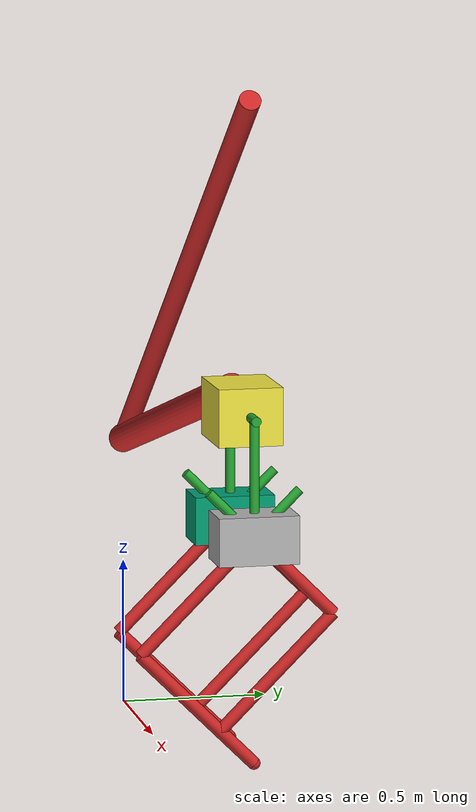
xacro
<?xml version="1.0"?>

<!-- Header File for ATRIAS 2.0 Robot Model -->
<!-- Adapted for ATRIAS 2.0 in Winter Term 2012 by Andrew Peekema and Matthew Rueben -->

<robot name="atrias"
	xmlns:sensor="http://playerstage.sourceforge.net/gazebo/xmlschema/#sensor"
	xmlns:controller="http://playerstage.sourceforge.net/gazebo/xmlschema/#controller"
	xmlns:joint="http://playerstage.sourceforge.net/gazebo/xmlschema/#slider"
	xmlns:xacro="http://www.ros.org/wiki/xacro"
	xmlns:interface="http://playerstage.sourceforge.net/gazebo/xmlschema/#interface"
	xmlns:model="http://playerstage.sourceforge.net/gazebo/xmlschema/#model"
	xmlns:geo="http://willowgarage.com/xmlschema/#geo"
	xmlns:geom="http://playerstage.sourceforge.net/gazebo/xmlschema/#geom"
	xmlns:body="http://playerstage.sourceforge.net/gazebo/xmlschema/#body" >

	<!-- get robot model macro -->
	<include filename="atrias20_leg.urdf.xacro" />
	<include filename="atrias20_torso.urdf.xacro" />
	<include filename="boom21.urdf.xacro" />

    <!-- Constants -->
	<property name="M_PI" value="3.14159"/>

	<!--                    Constaints and Model                                 -->

	<!-- Boom Constraint -->
	<xacro:boom21 child_link="torso" child_offset="${0.25/2}" child_pitch="${-M_PI/180*15}" initial_pitch_angle="${M_PI/180*15}" biped="1" />

	<!-- Torso Body -->
	<xacro:atrias_torso torso_link="torso" />

	<!-- Leg 1 -->
	<xacro:torso_motor torso_link="torso" hip_link="leg_hip_link" reflect="1" suffix="1" />

	<xacro:torso_leg_joint hip_link="leg_hip_link" reflect="1" suffix="1" />

	<xacro:atrias_leg hip_link="leg_hip_link" suffix="1">
		<origin xyz="0 0 0.002" />
		<axis>1 0 0</axis>
 	</xacro:atrias_leg>
	<!-- Note: Origin = hip center of mass, and axis = axis of rotation for 4-bar linkage -->

	<!-- Leg 2 -->
	<xacro:torso_motor torso_link="torso" hip_link="leg_hip_link" reflect="-1" suffix="2" />

	<xacro:torso_leg_joint hip_link="leg_hip_link" reflect="-1" suffix="2" />

	<xacro:atrias_leg hip_link="leg_hip_link" suffix="2">
		<origin xyz="0 0 0.002" />
		<axis>1 0 0</axis>
 	</xacro:atrias_leg>

	<!--                    Controller			                                 -->

	<!-- initializes the all-in-one controller with the correct link names, etc. -->
</robot>

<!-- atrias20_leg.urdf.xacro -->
<!-- ATRIAS 2.0 Leg Robot Model -->
<!-- Adapted for ATRIAS 2.0 in Winter Term 2012 by Andrew Peekema and Matthew Rueben -->

<robot
	xmlns:sensor="http://playerstage.sourceforge.net/gazebo/xmlschema/#sensor"
	xmlns:controller="http://playerstage.sourceforge.net/gazebo/xmlschema/#controller"
	xmlns:joint="http://playerstage.sourceforge.net/gazebo/xmlschema/#slider"
	xmlns:xacro="http://www.ros.org/wiki/xacro"
	xmlns:interface="http://playerstage.sourceforge.net/gazebo/xmlschema/#interface"
	xmlns:model="http://playerstage.sourceforge.net/gazebo/xmlschema/#model"
	xmlns:geo="http://willowgarage.com/xmlschema/#geo"
	xmlns:geom="http://playerstage.sourceforge.net/gazebo/xmlschema/#geom"
	xmlns:body="http://playerstage.sourceforge.net/gazebo/xmlschema/#body" >

	<!-- Mathematical Constants -->
	<property name="M_PI" value="3.14159"/>
	<property name="SQRT_2" value="1.41421356"/>

	<!-- Visual Parameters (no effect on physical simulation) -->
	<property name="body_size" value="0.25 0.15 0.15" />
	<property name="visual_motor_radius" value="0.015" />
	<property name="leg_segment_radius" value="0.02" />
	<property name="toe_radius" value="0.02" />
	<property name="visual_motor_length" value="0.4" />

	<!-- Leg Segment Lengths -->
	<property name="thigh_length" value="0.500" />
	<property name="shin_length" value="0.350" />
	<property name="lower_length" value="0.500" />
	<property name="fourBar_length" value="0.500" />

	<!-- Link Masses -->
	<property name="body_mass" value="11.61" />
	<property name="motor_mass" value="1.273" />
	<property name="thigh_mass" value="3.132" />
	<property name="shin_mass" value="3.137" />
	<property name="lower_mass" value="0.204" />
	<property name="fourBar_mass" value="0.166" />
	<property name="toe_mass" value="0.087" />

	<!-- Spring/Damping Coefficients -->
	<property name="spring_stiffness" value="1200" />	<!-- N*m/rad -->
	<property name="motor_damping" value="0" />		<!-- N*m*s/rad -->
	<property name="motor_friction" value="0" />

	<!-- macro to use in the header file when parsed by xacro -->
	<xacro:macro name="atrias_leg" params="hip_link suffix *origin *axis" >

		<!--								Body                                     -->

		<link name="${hip_link}${suffix}">
			<inertial>
				<insert_block name="origin" />
				<mass value="${body_mass}" />
				<inertia ixx="0.0932" ixy="0.0044" ixz="-0.0019"
						 iyy="0.0833" iyz="-0.0102"
					     izz="0.0785" />
			</inertial>
			<visual>
				<origin xyz="0 0 0" rpy="0 0 0" />
				<geometry>
				  <box size="${body_size}" />
				</geometry>
			</visual>
			<collision>
				<origin xyz="0 0 0" rpy="0 0 0" />
				<geometry>
				  <box size="${body_size}" />
				</geometry>
			</collision>
		</link>

		<gazebo reference="${hip_link}${suffix}">
			<material>Gazebo/BumpyMetal</material>
		</gazebo>

		<!--								Thigh Motor                              -->

		<joint name="hip_thighMotor_joint${suffix}" type="continuous">
			<axis xyz="0 1 0" />
			<origin xyz="0 0 0" rpy="0 0 0" />
			<parent link="${hip_link}${suffix}" />
			<child link="thighMotor_link${suffix}" />
</joint>

		<link name="thighMotor_link${suffix}">
			<inertial>
				<mass value="${motor_mass}"/>
				<origin xyz="0 -0.044 0" />
				<inertia ixx="4" ixy="0" ixz="0"
				         iyy="7.25" iyz="0"
				         izz="4" />
			</inertial>
			<visual>
				<origin xyz="0 0 0" rpy="0 ${-M_PI/4} 0" />
				<geometry>
				  <cylinder length="${visual_motor_length}" radius="${visual_motor_radius}" />
				</geometry>
			</visual>
			<collision>
				<origin xyz="0 0 0" rpy="0 ${-M_PI/4} 0" />
				<geometry>
					<cylinder length="${visual_motor_length}" radius="${visual_motor_radius}" />
				</geometry>
			</collision>
		</link>

		<gazebo reference="thighMotor_link${suffix}">
			<material> Gazebo/Green </material>
		</gazebo>

		<gazebo>
            <controller:joint_impedance name="thighDamping${suffix}" plugin="libjoint_impedance.so">
                <alwaysOn> true </alwaysOn>
                <updateRate> 10000 </updateRate>
				<bodyName1> ${hip_link}${suffix} </bodyName1>
				<bodyName2> thighMotor_link${suffix} </bodyName2>
                <rotationalDamping> ${motor_damping} </rotationalDamping>
                <rotationalFriction> ${motor_friction} </rotationalFriction>
            </controller:joint_impedance>

			<controller:spring name="thighSpring${suffix}" plugin="libspring.so">
				<alwaysOn> true </alwaysOn>
				<updateRate> 10000 </updateRate>
				<bodyName1> thighMotor_link${suffix} </bodyName1>
				<bodyName2> thigh_link${suffix} </bodyName2>
				<rotationalStiffness> ${spring_stiffness} </rotationalStiffness>
			</controller:spring>
		</gazebo>

		<!--					Shin Motor                                           -->

		<joint name="hip_shinMotor_joint${suffix}" type="continuous">
			<axis xyz="0 1 0" />
			<origin xyz="0 0 0" rpy="0 0 0" />
			<parent link="${hip_link}${suffix}" />
			<child link="shinMotor_link${suffix}"/>
</joint>

		<link name="shinMotor_link${suffix}">
			<inertial>
				<mass value="${motor_mass}"/>
				<origin xyz="0 0.044 0" />
				<inertia ixx="4" ixy="0" ixz="0"
				         iyy="7.25" iyz="0"
				         izz="4" />
			</inertial>
			<visual>
				<origin xyz="0 0 0" rpy="0 ${M_PI/4} 0" />
				<geometry>
				  <cylinder length="${visual_motor_length}" radius="${visual_motor_radius}" />
				</geometry>
			</visual>
			<collision>
				<origin xyz="0 0 0" rpy="0 ${M_PI/4} 0" />
				<geometry>
					<cylinder length="${visual_motor_length}" radius="${visual_motor_radius}" />
				</geometry>
			</collision>
		</link>

		<gazebo reference="shinMotor_link${suffix}">
			<material>Gazebo/Green</material>
		</gazebo>

        <gazebo>
            <controller:joint_impedance name="shinDamping${suffix}" plugin="libjoint_impedance.so">
                <alwaysOn> true </alwaysOn>
                <updateRate> 10000 </updateRate>
				<bodyName1> ${hip_link}${suffix} </bodyName1>
				<bodyName2> shinMotor_link${suffix} </bodyName2>
                <rotationalDamping> ${motor_damping} </rotationalDamping>
                <rotationalFriction> ${motor_friction} </rotationalFriction>
            </controller:joint_impedance>

			<controller:spring name="shinSpring${suffix}" plugin="libspring.so">
				<alwaysOn> true </alwaysOn>
				<updateRate> 10000 </updateRate>
				<bodyName1> shinMotor_link${suffix} </bodyName1>
				<bodyName2> shin_link${suffix} </bodyName2>
				<rotationalStiffness> ${spring_stiffness} </rotationalStiffness>
			</controller:spring>
		</gazebo>

		<!--							 Thigh 										-->

		<joint name="body_thigh_joint${suffix}" type="continuous">
			<axis xyz="0 1 0" />
			<origin xyz="0 0 0" rpy="0 0 0" />
			<parent link="${hip_link}${suffix}" />
			<child link="thigh_link${suffix}"/>
</joint>

		<link name="thigh_link${suffix}">
			<inertial>
				<mass value="${thigh_mass}"/>
				<origin xyz="0.100 -0.020 -0.011" />
				<inertia ixx="0.0339" ixy="0.0056" ixz="-0.0179"
				         iyy="0.0688" iyz="-0.0017"
				         izz="0.0512" />
			</inertial>
			<visual>
				<origin xyz="${thigh_length/SQRT_2/2} 0 ${-thigh_length/SQRT_2/2}" rpy="0 ${-M_PI/4} 0" />
				<geometry>
				  <cylinder length="${thigh_length}" radius="${leg_segment_radius}" />
				</geometry>
			</visual>
			<collision>
				<origin xyz="${thigh_length/SQRT_2/2} 0 ${-thigh_length/SQRT_2/2}" rpy="0 ${-M_PI/4} 0" />
				<geometry>
					<cylinder length="${thigh_length}" radius="${leg_segment_radius}" />
				</geometry>
			</collision>
		</link>

		<gazebo reference="thigh_link${suffix}">
			<material>Gazebo/Red</material>
		</gazebo>

		<!--							 Shin 			 							-->

		<joint name="body_shin_joint${suffix}" type="continuous">
			<axis xyz="0 1 0" />
			<origin xyz="0 0 0" rpy="0 0 0" />
			<parent link="${hip_link}${suffix}" />
			<child link="shin_link${suffix}"/>
</joint>

		<link name="shin_link${suffix}">
			<inertial>
				<mass value="${shin_mass}"/>
				<origin xyz="-0.0979 0.0200 -0.0081" />
				<inertia ixx="0.0309" ixy="0.0054" ixz="0.0154"
				         iyy="0.0637" iyz="0.0014"
				         izz="0.0493" />
			</inertial>
			<visual>
				<origin xyz="${-shin_length/SQRT_2/2} 0 ${-shin_length/SQRT_2/2}" rpy="0 ${M_PI/4} 0" />
				<geometry>
				  <cylinder length="${shin_length}" radius="${leg_segment_radius}" />
				</geometry>
			</visual>
			<collision>
				<origin xyz="${-shin_length/SQRT_2/2} 0 ${-shin_length/SQRT_2/2}" rpy="0 ${M_PI/4} 0" />
				<geometry>
					<cylinder length="${shin_length}" radius="${leg_segment_radius}" />
				</geometry>
			</collision>
		</link>

		<gazebo reference="shin_link${suffix}">
			<material>Gazebo/Red</material>
		</gazebo>

		<!--								 Lower Link					 			-->

		<joint name="thigh_lower_joint${suffix}" type="revolute">
			<axis xyz="0 1 0" />
			<origin xyz="${thigh_length/SQRT_2} 0 ${-thigh_length/SQRT_2}" rpy="0 0 0" />
			<parent link="thigh_link${suffix}" />
			<child link="lower_link${suffix}"/>
			<limit lower="${-M_PI/2+0.05}" upper="${M_PI/2}" effort="10000000000000" velocity="100000000000000" />
		</joint>

		<link name="lower_link${suffix}">
			<inertial>
				<mass value="${lower_mass}"/>
				<origin xyz="-0.127 0 -0.141" />
				<inertia ixx="0.0027" ixy="0" ixz="0.0026"
				         iyy="0.0054" iyz="0"
				         izz="0.0028" />
			</inertial>
			<visual>
				<origin xyz="${-lower_length/SQRT_2/2} 0 ${-lower_length/SQRT_2/2}" rpy="0 ${M_PI/4} 0" />
				<geometry>
				  <cylinder length="${lower_length}" radius="${leg_segment_radius}" />
				</geometry>
			</visual>
			<collision>
				<origin xyz="${-lower_length/SQRT_2/2} 0 ${-lower_length/SQRT_2/2}" rpy="0 ${M_PI/4} 0" />
				<geometry>
					<cylinder length="${lower_length}" radius="${leg_segment_radius}" />
				</geometry>
			</collision>
		</link>

		<gazebo reference="lower_link${suffix}">
			<material>Gazebo/Red</material>
		</gazebo>

		<!--								 Four Bar	 							-->

		<joint name="shin_fourBar_joint${suffix}" type="revolute">
			<axis xyz="0 1 0" />
			<origin xyz="${-shin_length/SQRT_2} 0 ${-shin_length/SQRT_2}" rpy="0 0 0" />
			<parent link="shin_link${suffix}" />
			<child link="fourBar_link${suffix}"/>
			<limit lower="${-M_PI/2+0.05}" upper="${M_PI/2}" effort="10000000000000" velocity="100000000000000" />
		</joint>

		<link name="fourBar_link${suffix}">
			<inertial>
				<mass value="${fourBar_mass}"/>
				<origin xyz="0.1633 0 -0.1633" />
				<inertia ixx="0.0033" ixy="0" ixz="-0.0032"
				         iyy="0.0063" iyz="0"
				         izz="0.0033" />
			</inertial>
			<visual>
				<origin xyz="${fourBar_length/SQRT_2/2} 0 ${-fourBar_length/SQRT_2/2}" rpy="0 ${-M_PI/4} 0" />
				<geometry>
				  <cylinder length="${fourBar_length}" radius="${leg_segment_radius}" />
				</geometry>
			</visual>
			<collision>
				<origin xyz="${fourBar_length/SQRT_2/2} 0 ${-fourBar_length/SQRT_2/2}" rpy="0 ${-M_PI/4} 0" />
				<geometry>
					<cylinder length="${fourBar_length}" radius="${leg_segment_radius}" />
				</geometry>
			</collision>

		</link>

		<gazebo reference="fourBar_link${suffix}">
			<material>Gazebo/Red</material>
		</gazebo>

		<!--							Four Bar Linkage Joint						-->

		<gazebo>
			<joint:hinge name="lower_fourBar_joint${suffix}">
				<body1>lower_link${suffix}</body1>
				<body2>fourBar_link${suffix}</body2>
				<anchor>lower_link${suffix}</anchor>
				<insert_block name="axis" />
				<anchorOffset>${-(lower_length-0.15)/SQRT_2} 0 ${-(lower_length-0.15)/SQRT_2}</anchorOffset>
			</joint:hinge>
		</gazebo>

		<!--							Toe											-->

		<joint name="lower_toe_joint${suffix}" type="continuous">
			<axis xyz="1 0 0" />
			<origin xyz="${-fourBar_length/SQRT_2} 0 ${-fourBar_length/SQRT_2}" rpy="0 0 0" />
			<parent link="lower_link${suffix}" />
			<child link="toe_link${suffix}"/>
		</joint>

		<link name="toe_link${suffix}">
			<inertial>
				<mass value="${toe_mass}"/>
				<origin xyz="0 0 0" />
				<inertia ixx="0.0000001" ixy="0" ixz="0"
				         iyy="0.0000001" iyz="0"
				         izz="0.0000001" />
			</inertial>
			<visual>
				<origin xyz="0 0 0" rpy="0 0 0" />
				<geometry>
				  <sphere radius="${toe_radius}" />
				</geometry>
			</visual>
			<collision>
				<origin xyz="0 0 0" rpy="0 0 0" />
				<geometry>
					<sphere radius="${toe_radius}" />
				</geometry>
			</collision>
		</link>

		<gazebo reference="toe_link${suffix}">
			<mu1 value="100.0" />
			<mu2 value="100.0" />
			<kp  value="1000000.0" />
			<kd  value="1.0" />
			<material>Gazebo/Red</material>
		</gazebo>

	</xacro:macro>

</robot>

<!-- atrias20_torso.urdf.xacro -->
<!-- ATRIAS 2.0 Hip Model -->
<!-- Adapted for ATRIAS 2.0 in Winter Term 2012 by Andrew Peekema and Matthew Rueben -->

<robot
	xmlns:sensor="http://playerstage.sourceforge.net/gazebo/xmlschema/#sensor"
	xmlns:controller="http://playerstage.sourceforge.net/gazebo/xmlschema/#controller"
	xmlns:joint="http://playerstage.sourceforge.net/gazebo/xmlschema/#slider"
	xmlns:xacro="http://www.ros.org/wiki/xacro"
	xmlns:interface="http://playerstage.sourceforge.net/gazebo/xmlschema/#interface"
	xmlns:model="http://playerstage.sourceforge.net/gazebo/xmlschema/#model"
	xmlns:geo="http://willowgarage.com/xmlschema/#geo"
	xmlns:geom="http://playerstage.sourceforge.net/gazebo/xmlschema/#geom"
	xmlns:torso="http://playerstage.sourceforge.net/gazebo/xmlschema/#torso" >

	<!-- Mathematical Constants -->
	<property name="M_PI" value="3.14159"/>
	<property name="SQRT_2" value="1.41421356"/>

	<!-- Visual Parameters (no effect on physical simulation) -->
    <property name="torso_size" value="0.25 0.2 0.18" />
	<property name="torsoMotor_radius" value="0.015" />
	<property name="torsoMotor_length" value="0.2" />
	<property name="coupling_radius" value="0.015" />

	<!-- Link Lengths -->
	<property name="torso_height" value="0.36" />
	<property name="torsoAttachment_length" value="0.17" />

	<!-- Link Masses -->
	<property name="torso_mass" value="0.500" />
	<property name="torsoMotor_mass" value="1.00" />
	<property name="torsoAttachment_mass" value="0.500" />

	<!-- Spring/Damping Coefficients -->
	<property name="torsoMotor_damping" value="${2*0.5*34.64}" />	<!-- 2*Zeta*sqrt(K) (Guessed Zeta)-->
	<property name="torsoMotor_friction" value="1" />				<!-- Guess -->

    <xacro:macro name="atrias_torso" params="torso_link" >

        <!--                                Torso                                     -->

        <link name="${torso_link}">
            <inertial>
                <origin xyz="0 0 0" />
                <mass value="${torso_mass}" />
                <inertia ixx="0.01" ixy="0" ixz="0"
                         iyy="0.01" iyz="0"
                         izz="0.01" />
            </inertial>
            <visual>
                <origin xyz="0 0 0" rpy="0 0 0" />
                <geometry>
                  <box size="${torso_size}" />
                </geometry>
            </visual>
            <collision>
                <origin xyz="0 0 0" rpy="0 0 0" />
                <geometry>
                  <box size="${torso_size}" />
                </geometry>
            </collision>
        </link>
        <gazebo reference="${torso_link}">
            <material>Gazebo/BumpyMetal</material>
        </gazebo>

    </xacro:macro>

	<xacro:macro name="torso_motor" params="torso_link reflect suffix hip_link" >

		<!--						Torso Motor		                              -->

		<joint name="torso_torsoMotor${suffix}_joint" type="continuous">
			<axis xyz="0 1 0" />
			<origin xyz="0 0 0" rpy="0 0 0" />
			<parent link="${torso_link}" />
			<child link="torsoMotor${suffix}" />
			<dynamics damping="${torsoMotor_damping}" friction="${torsoMotor_friction}" />
		</joint>

		<link name="torsoMotor${suffix}">
			<inertial>
				<mass value="${torsoMotor_mass}"/>
				<origin xyz="${reflect*0.05} 0 0" />
				<inertia ixx="3" ixy="0.0" ixz="0.0"
						 iyy="5" iyz="0.0"
						 izz="3" />
			</inertial>
			<visual>
				<origin xyz="${torsoMotor_length/2*reflect} 0 0" rpy="0 ${M_PI/2} 0" />
				<geometry>
				  <cylinder length="${torsoMotor_length}" radius="${torsoMotor_radius}" />
				</geometry>
			</visual>
			<collision>
				<origin xyz="${torsoMotor_length/2*reflect} 0 0" rpy="0 ${M_PI/2} 0" />
				<geometry>
					<cylinder length="${torsoMotor_length}" radius="${torsoMotor_radius}" />
				</geometry>
			</collision>
		</link>

		<gazebo reference="torsoMotor${suffix}">
			<material> Gazebo/Green </material>
		</gazebo>

		<!--						Coupling		                              -->

		<joint name="torsoMotor${suffix}_coupling${suffix}_joint" type="continuous">
			<axis xyz="0 1 0" />
			<origin xyz="${torsoAttachment_length*reflect} 0 0" rpy="0 0 0" />
			<parent link="torsoMotor${suffix}" />
			<child link="coupling${suffix}" />
		</joint>

		<link name="coupling${suffix}">
			<inertial>
				<mass value="0.01"/>
				<origin xyz="0 0 0" />
				<inertia ixx="0.001" ixy="0.0" ixz="0.0"
						 iyy="0.001" iyz="0.0"
						 izz="0.001" />
			</inertial>
			<visual>
				<origin xyz="0 0 ${-torso_height/2}" rpy="0 0 0" />
				<geometry>
				  <cylinder length="${torso_height}" radius="${coupling_radius}" />
				</geometry>
			</visual>
			<collision>
				<origin xyz="0 0 ${-torso_height/2}" rpy="0 0 0" />
				<geometry>
					<cylinder length="${torso_height}" radius="${coupling_radius}" />
				</geometry>
			</collision>
		</link>

		<gazebo reference="coupling${suffix}">
			<material> Gazebo/Green </material>
		</gazebo>

		<!--					Torso Attachment                                    -->

		<joint name="torso_torsoAttachment${suffix}_joint" type="continuous">
			<axis xyz="0 1 0" />
			<origin xyz="0 0 ${-torso_height}" rpy="0 0 0" />
			<parent link="${torso_link}" />
			<child link="torsoAttachment${suffix}"/>
		</joint>

		<link name="torsoAttachment${suffix}">
			<inertial>
				<mass value="${torsoAttachment_mass}"/>
				<origin xyz="${reflect*0.05} 0 0" />
				<inertia ixx="0.01" ixy="0.0" ixz="0.0"
						 iyy="0.01" iyz="0.0"
						 izz="0.01" />
			</inertial>
			<visual>
				<origin xyz="${torsoAttachment_length/2*reflect} 0 0" rpy="0 ${M_PI/2} 0" />
				<geometry>
				  <cylinder length="${torsoAttachment_length}" radius="${torsoMotor_radius}" />
				</geometry>
			</visual>
			<collision>
				<origin xyz="${torsoAttachment_length/2*reflect} 0 0" rpy="0 ${M_PI/2} 0" />
				<geometry>
				  <cylinder length="${torsoAttachment_length}" radius="${torsoMotor_radius}" />
				</geometry>
			</collision>
		</link>

		<gazebo reference="torsoAttachment${suffix}">
			<material> Gazebo/Red </material>
		</gazebo>

		<!--					Four Bar Joint                                    -->

		<gazebo>
			<joint:hinge name="torsoFourBar${suffix}_joint">
				<body1>coupling${suffix}</body1>
				<body2>torsoAttachment${suffix}</body2>
				<anchor>coupling${suffix}</anchor>
				<axis>0 1 0</axis>
				<anchorOffset>0 0 ${-torso_height}</anchorOffset>
			</joint:hinge>
		</gazebo>

	</xacro:macro>

    <xacro:macro name="torso_leg_joint" params="suffix reflect hip_link" >

		<!--					Leg Attachment                                    -->

		<joint name="torsoAttachment${suffix}_leg_joint" type="fixed">
			<origin xyz="${torsoAttachment_length*reflect} 0 0" rpy="0 0 ${-M_PI/2}" />
			<parent link="torsoAttachment${suffix}" />
			<child link="${hip_link}${suffix}"/>
		</joint>

	</xacro:macro>

</robot>

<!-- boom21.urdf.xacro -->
<robot
	xmlns:sensor="http://playerstage.sourceforge.net/gazebo/xmlschema/#sensor"
	xmlns:controller="http://playerstage.sourceforge.net/gazebo/xmlschema/#controller"
	xmlns:joint="http://playerstage.sourceforge.net/gazebo/xmlschema/#slider"
	xmlns:xacro="http://www.ros.org/wiki/xacro"
	xmlns:interface="http://playerstage.sourceforge.net/gazebo/xmlschema/#interface"
	xmlns:model="http://playerstage.sourceforge.net/gazebo/xmlschema/#model"
	xmlns:geo="http://willowgarage.com/xmlschema/#geo"
	xmlns:geom="http://playerstage.sourceforge.net/gazebo/xmlschema/#geom"
	xmlns:body="http://playerstage.sourceforge.net/gazebo/xmlschema/#body" >

	<!-- Constants -->
	<property name="M_PI" value="3.14159"/>
	<property name="SQRT_2" value="1.41421356"/>

	<!-- Physical Properties -->
	<property name="upright_length" value="0.93" />
	<property name="yaw_length" value="2.4" />
	<property name="pitch_length" value="1.795" />

	<property name="yaw_mass" value="14.19014" />
	<property name="pitch_mass" value="2.66782" />

	<!-- Visual Properties -->
	<property name="yaw_radius" value="0.034" />
	<property name="pitch_radius" value="0.049" />

	<xacro:macro name="boom21" params="initial_pitch_angle child_link child_offset child_pitch biped">

		<link name="world" />

		<!--				 			Yaw											-->

		<joint name="upright_yaw_joint" type="continuous">
			<origin xyz="0 0 ${upright_length}" rpy="${M_PI/2} 0 0" />	<!-- x along boom, y upwards -->
			<axis xyz="0 1 0" />
			<parent link="world" />
			<child link="yaw_link"/>
		</joint>

		<link name="yaw_link">
			<inertial>
				<mass value="${yaw_mass}"/>
				<origin xyz="0.15069 0.0007 -0.00561" />
				<inertia ixx="3.7013" ixy="2.3205" ixz="0.0103"
				         iyy="2.7884" iyz="0.0229"
				         izz="6.2744" />
			</inertial>
		<visual>
				<origin xyz="1 0.7 0" rpy="0 ${M_PI/2} 0.6107" />
				<geometry>
				  <cylinder length="${yaw_length}" radius="${yaw_radius}" />
				</geometry>
			</visual>
			<collision>
				<origin xyz="1 0.7 0" rpy="0 ${M_PI/2} 0.6107" />
				<geometry>
					<cylinder length="${yaw_length}" radius="${yaw_radius}" />
				</geometry>
			</collision>
		</link>

		<gazebo reference="yaw_link">
			<material>Gazebo/Red</material>
		</gazebo>

		<!--				 			Pitch                                    -->

		<joint name="yaw_pitch_joint" type="continuous">
			<origin xyz="0 0 0" rpy="0 0 ${initial_pitch_angle}" />
			<axis xyz="0 0 1" />
			<limit lower="${-M_PI/180*25}" upper="${M_PI/180*25}" effort="100000" velocity="100000" />
			<parent link="yaw_link" />
			<child link="pitch_link"/>
		</joint>

		<link name="pitch_link">
			<inertial>
				<mass value="${pitch_mass}"/>
				<origin xyz="1.09153 0.00637 0.0" />
				<inertia ixx="0.0069" ixy="0.0111" ixz="0.0"
				         iyy="0.9699" iyz="0.0"
				         izz="0.9712" />
			</inertial>
		<visual>
				<origin xyz="${pitch_length/2} 0 0" rpy="0 ${M_PI/2} 0" />
				<geometry>
				  <cylinder length="${pitch_length}" radius="${pitch_radius}" />
				</geometry>
			</visual>
			<collision>
				<origin xyz="${pitch_length/2} 0 0" rpy="0 ${M_PI/2} 0" />
				<geometry>
					<cylinder length="${pitch_length}" radius="${pitch_radius}" />
				</geometry>
			</collision>
		</link>

		<gazebo reference="pitch_link">
			<material>Gazebo/Red</material>
		</gazebo>

		<!--				 			Roll Joint                                   -->

		<joint name="pitch_roll_joint" type="continuous">
			<origin xyz="${pitch_length + child_offset} ${-0.08*biped} 0" rpy="${-M_PI/2*biped} ${-M_PI/2 + M_PI/2*biped} ${-M_PI/2 + M_PI/2*biped + child_pitch}" />
			<axis xyz="${biped} ${1-biped} 0" />
			<parent link="pitch_link" />
			<child link="${child_link}"/>
		</joint>

	</xacro:macro>

</robot>
